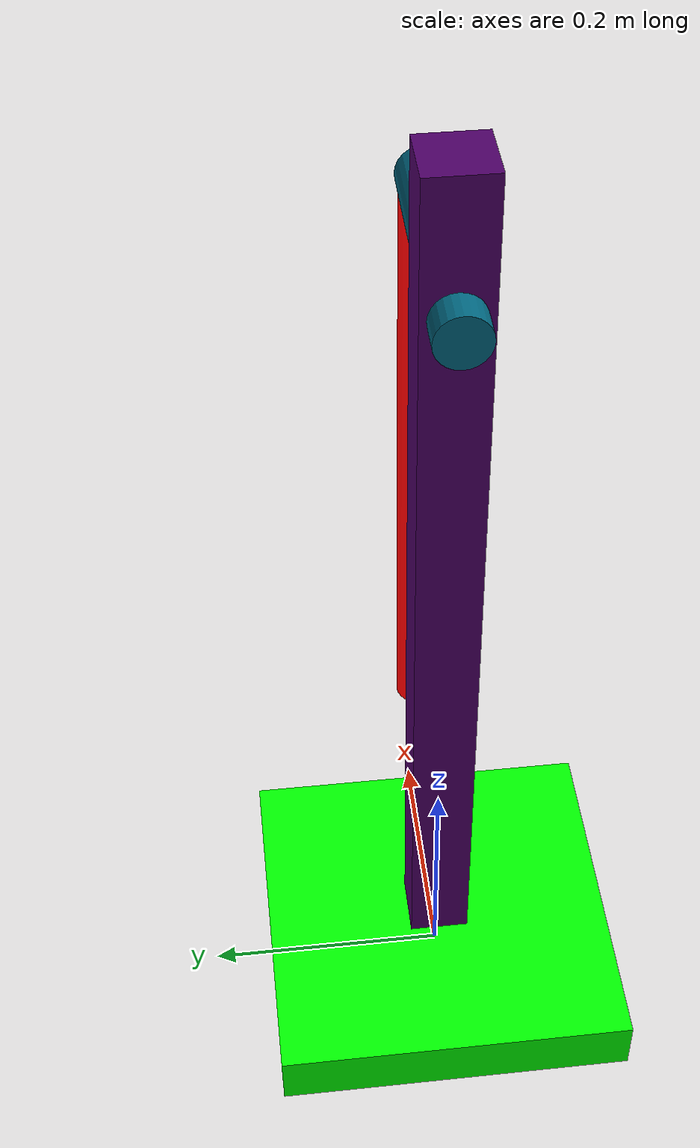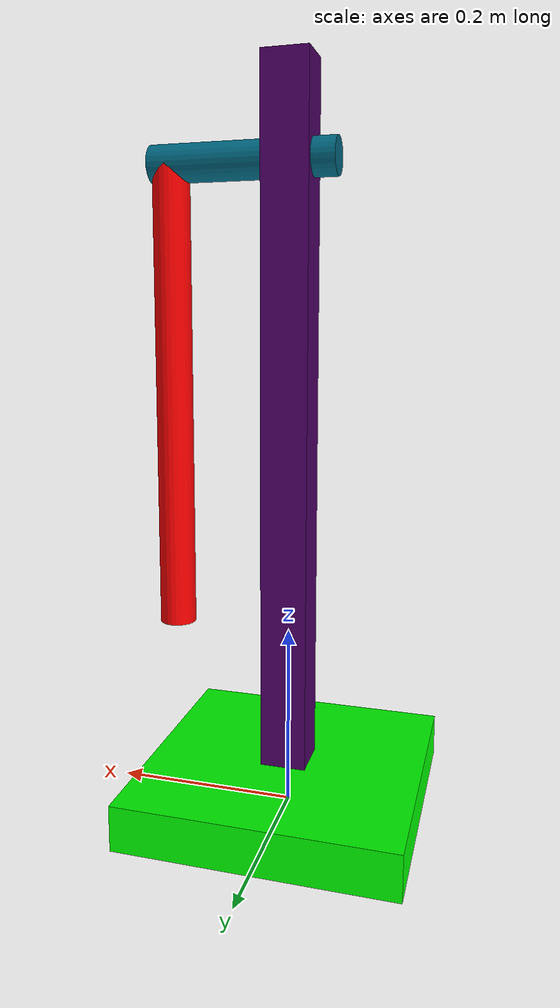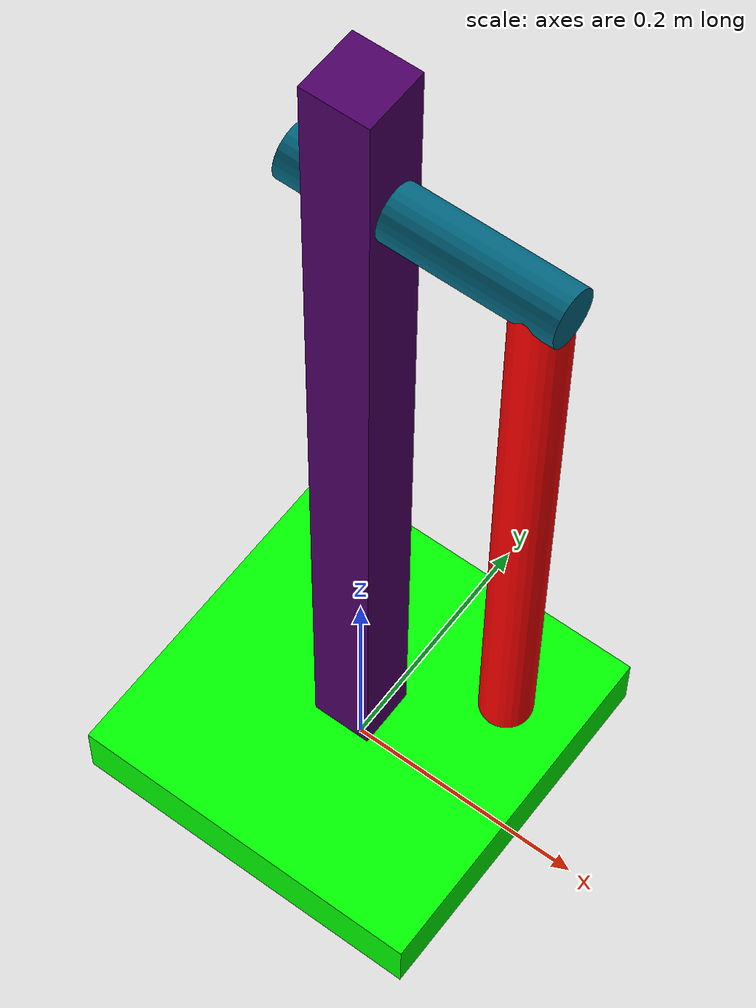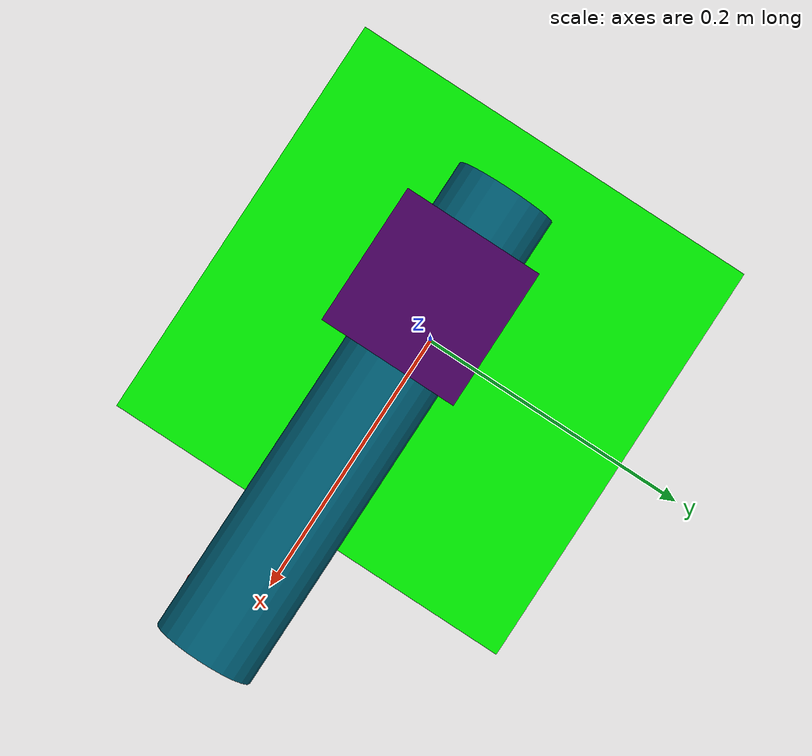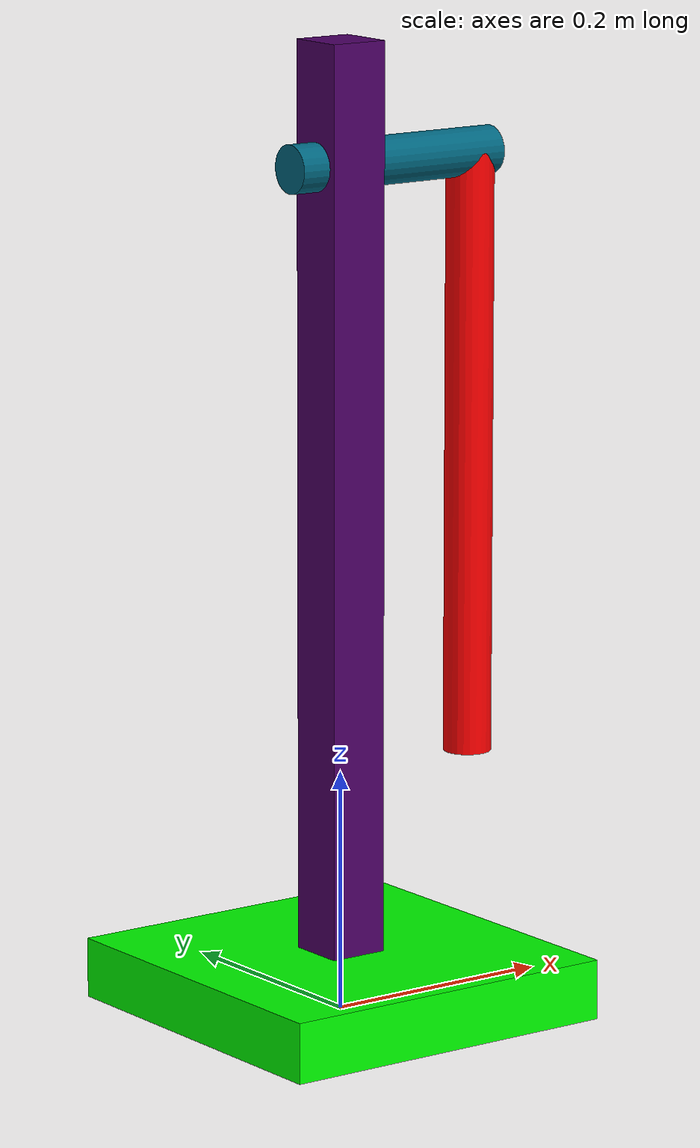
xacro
<?xml version='1.0'?>
<robot xmlns:xacro="http://www.ros.org/wiki/xacro" name="stick">

    <!--dummy
    link-->
    <xacro:property name="stand_length" value="0.05" />
    <xacro:property name="stand_width" value="0.05" />
    <xacro:property name="stand_height" value="0.8" />
    <xacro:property name="stand_mass" value="0.4" />
    <xacro:property name="base_extender_radius" value="0.02" />
    <xacro:property name="base_extender_height" value="0.2" />
    <xacro:property name="base_extender_mass" value="0.1" />
    <xacro:property name="stick_radius" value="0.02" />
    <xacro:property name="stick_height" value="0.5" />
    <xacro:property name="stick_mass" value="0.1" />

    <xacro:macro name="box_inertia" params="mass L W H">
        <inertia ixx="${1/12 * mass * (L**2 + W**2 )}" iyy="${1/12 * mass * (H**2 + W**2 )}"
            izz="${1/12 * mass * (L**2 + H**2 )}"
            ixy="0" ixz="0" iyz="0" />
    </xacro:macro>

    <xacro:macro name="cylinder_inertia" params="mass R H">
        <inertia ixx="${1/12 * mass * (3 * R**2 + H**2 )}" iyy="${1/12 * mass * (3 * R**2 + H**2 )}"
            izz="${0.5 * (mass * R**2 )}"
            ixy="0" ixz="0" iyz="0" />
    </xacro:macro>
    <link name="base_link" />

    <!-- All materials -->
    <material name="brown">
        <color rgba="0.3 0.0 0.4 1.0" />
    </material>
    <material name="blue">
        <color rgba="0.0 0.4 0.5 1.0" />
    </material>
    <material name="red">
        <color rgba="1.0 0.0 0.0 1.0" />
    </material>
    <material name="green">
        <color rgba="0.0 1.0 0.0 1.0" />
    </material>

    <!-- Heavy Base -->
    <link name="heavy_base">
        <visual>
            <origin xyz="0 0 0" rpy="0 0 0" />
            <geometry>
                <box size="0.3 0.3 0.05" />
            </geometry>
            <material name="green" />
        </visual>
        <collision>
            <origin xyz="0 0 0" rpy="0 0 0" />
            <geometry>
                <box size="0.3 0.3 0.05" />
            </geometry>
        </collision>
        <inertial>
            <mass value="1" />
            <xacro:box_inertia mass="1" L="0.3" W="0.3" H="0.3" />
        </inertial>
    </link>

    <joint name="base_link_heavy_base" type="fixed">
        <parent link="base_link" />
        <child link="heavy_base" />
        <origin xyz="0 0 0.025" rpy="0 0 0" />
    </joint>

    <!-- Base Stand -->
    <link name="stand_link">
        <visual>
            <origin xyz="0 0 0" rpy="0 0 0" />
            <geometry>
                <box size="${stand_length} ${stand_width} ${stand_height}" />
            </geometry>
            <material name="brown" />
        </visual>
        <collision>
            <origin xyz="0 0 0" rpy="0 0 0" />
            <geometry>
                <box size="${stand_length} ${stand_width} ${stand_height}" />
            </geometry>
        </collision>
        <inertial>
            <mass value="0.4" />
            <xacro:box_inertia mass="0.4" L="${stand_length}" W="${stand_width}" H="${stand_height}" />
        </inertial>
    </link>

    <joint name="joint_base_stand" type="fixed">
        <parent link="base_link" />
        <child link="stand_link" />
        <origin xyz="0 0 ${stand_height/2}" rpy="0 0 0" />
    </joint>

    <!-- Link between stand and stick -->
    <link name="base_extender">
        <visual>
            <origin xyz="0 0 0" rpy="${pi * 0.5} 0 0" />
            <geometry>
                <cylinder radius="${base_extender_radius}" length="${base_extender_height}" />
            </geometry>
            <material name="blue" />
        </visual>
        <collision>
            <origin xyz="0 0 0" rpy="${pi * 0.5} 0 0" />
            <geometry>
                <cylinder radius="${base_extender_radius}" length="${base_extender_height}" />
            </geometry>
        </collision>
        <inertial>
            <origin xyz="0 0 0" rpy="${pi * 0.5} 0 0" />
            <mass value="${base_extender_mass}" />
            <xacro:cylinder_inertia mass="${base_extender_mass}" R="${base_extender_radius}"
                H="${base_extender_height}" />
        </inertial>
    </link>
    <joint name="base_extender_base_joint" type="continuous">
        <parent link="stand_link" />
        <child link="base_extender" />
        <origin xyz="0.05 0 0.3" rpy="0 0 1.57" />
        <axis xyz="0 1 0" />
    </joint>

    <!-- Stick -->
    <link name="stick">
        <visual>
            <origin xyz="0 0 0" rpy="${pi * 0.5} 0 0" />
            <geometry>
                <cylinder radius="${stick_radius}" length="${stick_height}" />
            </geometry>
            <material name="red" />
        </visual>
        <collision>
            <origin xyz="0 0 0" rpy="${pi * 0.5} 0 0" />
            <geometry>
                <cylinder radius="${stick_radius}" length="${stick_height}" />
            </geometry>
        </collision>
        <inertial>
            <origin xyz="0 0 0" rpy="${pi * 0.5} 0 0" />
            <mass value="${stick_mass}" />
            <xacro:cylinder_inertia mass="${stick_mass}" R="${stick_radius}" H="${stick_height}" />
        </inertial>
    </link>
    <joint name="base_extender_stick_joint" type="fixed">
        <parent link="base_extender" />
        <child link="stick" />
        <origin xyz="0 -0.08 -0.25" rpy="1.57 0 1.57" />

    </joint>

    <!-- ROS2 Control Part -->
    <ros2_control name="GazeboSystem" type="system">
        <hardware>
            <plugin>gazebo_ros2_control/GazeboSystem</plugin>
        </hardware>
        <joint name="base_extender_base_joint">
            <command_interface name="velocity">
                <param name="min">-10</param>
                <param name="max">10</param>
            </command_interface>
            <state_interface name="position" />
            <state_interface name="velocity" />
            <state_interface name="effort" />
        </joint>
    </ros2_control>

    <gazebo>
        <plugin filename="libgazebo_ros2_control.so" name="gazebo_ros2_control">
            <parameters>$(find stick_balancing)/config/controller_configuration_velocity.yaml</parameters>
        </plugin>
    </gazebo>

</robot>
